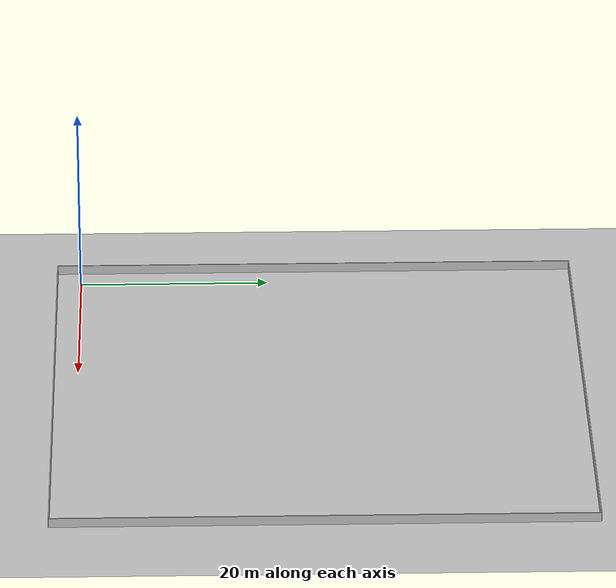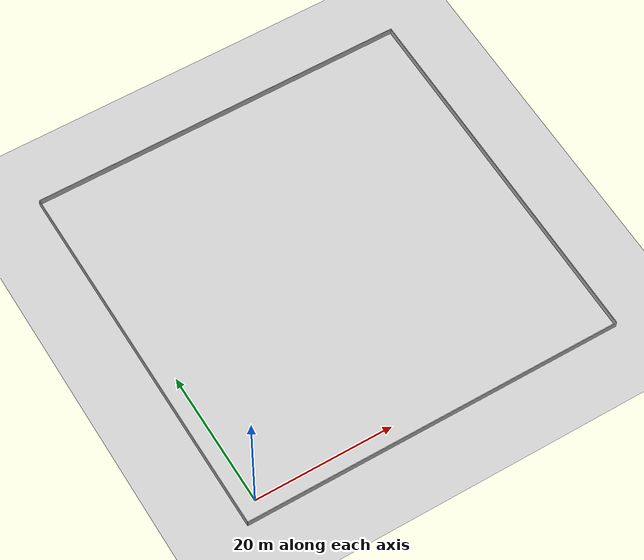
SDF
<?xml version="1.0"?>
<sdf version="1.6">
  <world name="empty_lrs_50m">
    <physics type="ode">
      <max_step_size>0.001</max_step_size>
      <real_time_factor>10</real_time_factor>
      <real_time_update_rate>10000</real_time_update_rate>
    </physics>
    <include><uri>model://sun</uri></include>
    <include><uri>model://ground_plane</uri></include>
    <plugin name="gas_world_plugin" filename="libgazebo_ros_state.so">
      <ros><namespace>/gazebo</namespace></ros>
      <update_rate>1.0</update_rate>
    </plugin>

    <model name="gas_obstacle_wall_left">
      <static>true</static><pose>-2.5 25 0.5 0 0 0</pose>
      <link name="link">
        <collision name="collision"><geometry><box><size>0.1 55 1</size></box></geometry></collision>
        <visual name="visual"><geometry><box><size>0.1 55 1</size></box></geometry></visual>
      </link>
    </model>
    <model name="gas_obstacle_wall_right">
      <static>true</static><pose>52.5 25 0.5 0 0 0</pose>
      <link name="link">
        <collision name="collision"><geometry><box><size>0.1 55 1</size></box></geometry></collision>
        <visual name="visual"><geometry><box><size>0.1 55 1</size></box></geometry></visual>
      </link>
    </model>
    <model name="gas_obstacle_wall_top">
      <static>true</static><pose>25 52.5 0.5 0 0 0</pose>
      <link name="link">
        <collision name="collision"><geometry><box><size>55 0.1 1</size></box></geometry></collision>
        <visual name="visual"><geometry><box><size>55 0.1 1</size></box></geometry></visual>
      </link>
    </model>
    <model name="gas_obstacle_wall_bottom">
      <static>true</static><pose>25 -2.5 0.5 0 0 0</pose>
      <link name="link">
        <collision name="collision"><geometry><box><size>55 0.1 1</size></box></geometry></collision>
        <visual name="visual"><geometry><box><size>55 0.1 1</size></box></geometry></visual>
      </link>
    </model>
  </world>
</sdf>
